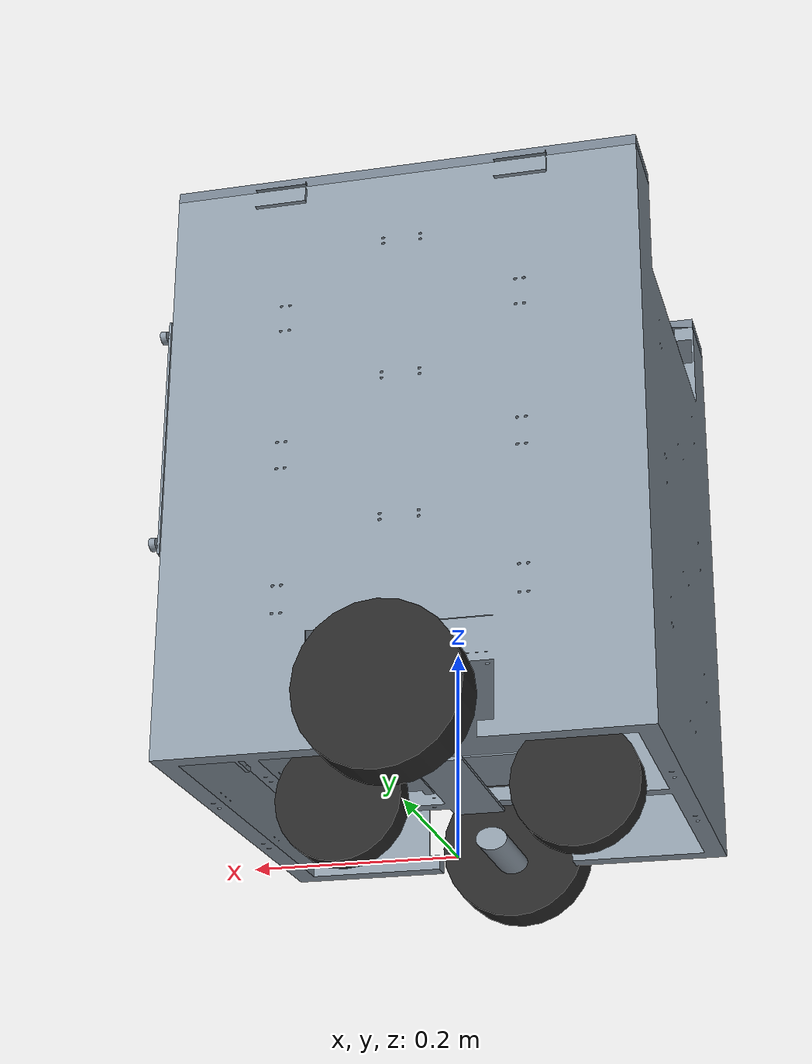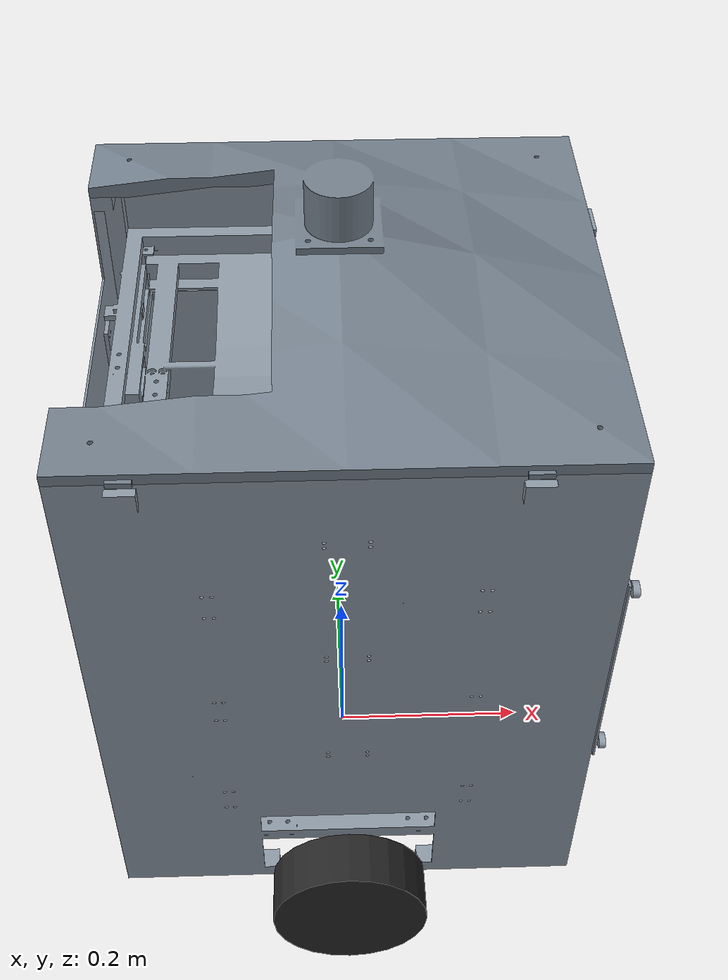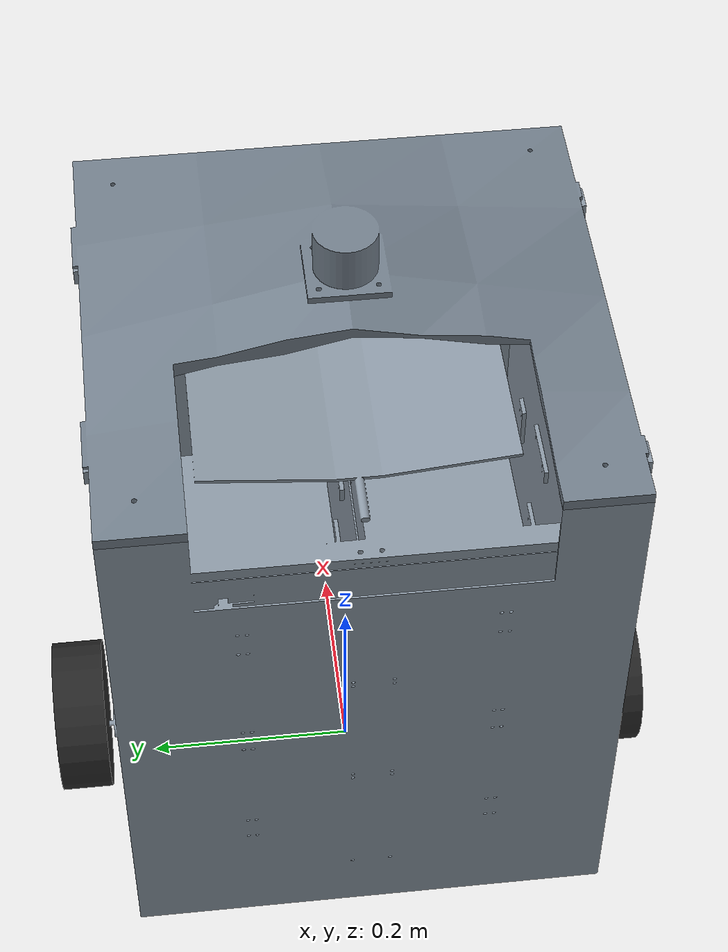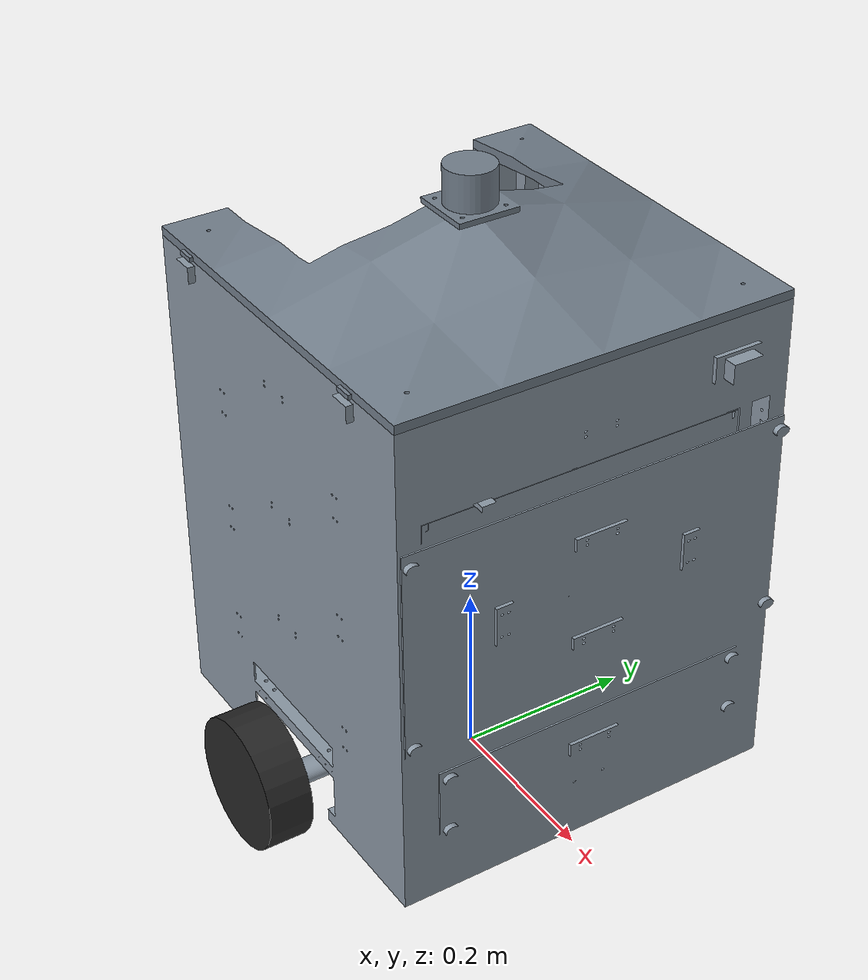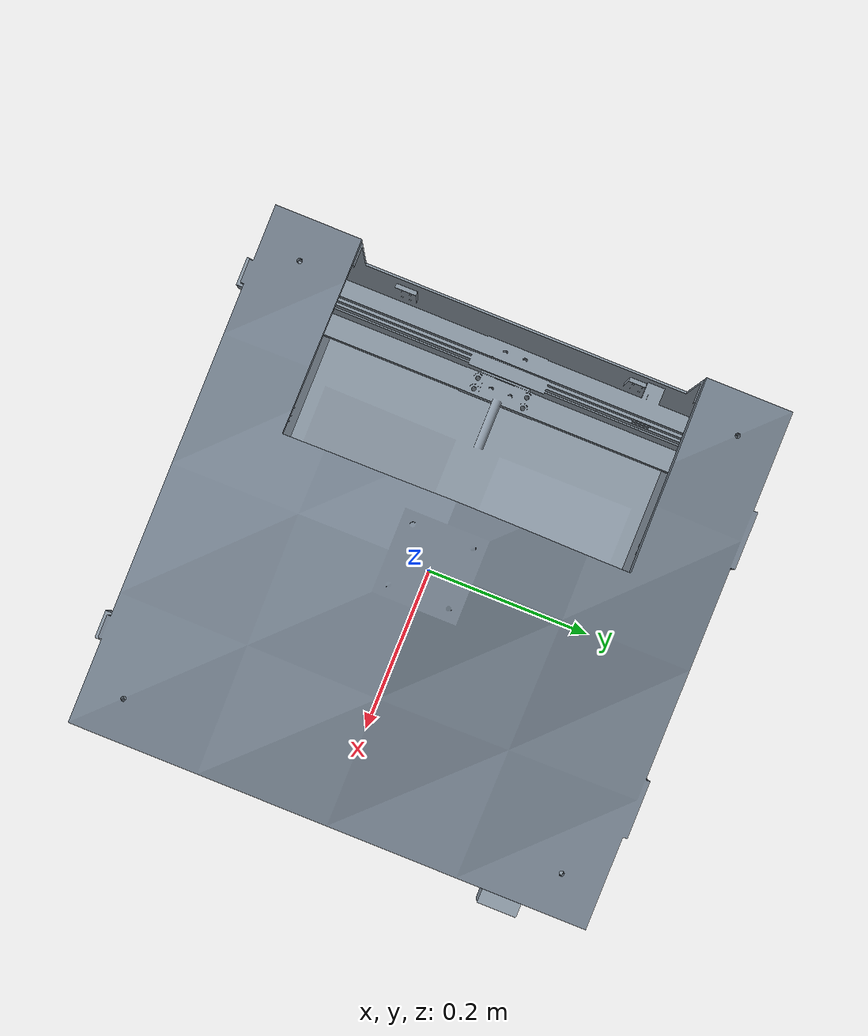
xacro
<?xml version="1.0"?>
<robot xmlns:xacro="http://www.ros.org/wiki/xacro" name="Limbo">

  <!-- 크기                              -->
  <xacro:property name="body_size" value="0.45"/>
  <!-- 몸체 윗면 높이. 2026-10-15 0.835 → 0.609: 뚜껑 위 MID-360이 바닥에서 0.70 m가 되게 몸체를 줄임(하드웨어 최종 치수). 카메라는 0.60 m -->
  <xacro:property name="body_top" value="0.609"/>
  <xacro:property name="body_clearance" value="0.06"/>

  <xacro:property name="wheel_radius" value="0.075"/>
  <xacro:property name="wheel_width" value="0.05"/>
  <xacro:property name="wheel_separation" value="0.54"/>

  <xacro:property name="caster_radius" value="0.0625"/>
  <xacro:property name="caster_x" value="0.115"/>

  <!-- 뚜껑 경첩: 몸체 앞-왼쪽 윗모서리. 뚜껑을 열면 위에 달린 MID-360도 같이 기운다 -->
  <xacro:property name="lid_hinge_x" value="0.225"/>
  <xacro:property name="lid_hinge_y" value="0.23"/>
  <xacro:property name="lid_thickness" value="0.07"/>
  <xacro:property name="lid_open_max" value="1.9722220547535925"/>

  <!-- MID-360: 뚜껑 위, 몸체 중심 위 바닥에서 0.70 m (경첩 높이 0.609 + 0.09094) -->
  <xacro:property name="mid360_above_hinge" value="0.09094"/>

  <!-- OAK-D Lite: 앞면, 바닥에서 0.60 m(camera_z), 중심에서 왼쪽 0.1575 m, 수평 -->
  <xacro:property name="camera_x" value="0.235"/>
  <xacro:property name="camera_y" value="0.1575"/>
  <xacro:arg name="camera_z" default="0.60"/>
  <xacro:arg name="camera_pitch_deg" default="0"/>
  <xacro:property name="camera_z" value="$(arg camera_z)"/>
  <xacro:property name="camera_pitch" value="${radians($(arg camera_pitch_deg))}"/>

  <material name="body_gray"><color rgba="0.55 0.60 0.65 1.0"/></material>
  <material name="lid_gray"><color rgba="0.45 0.50 0.55 1.0"/></material>
  <material name="black"><color rgba="0.15 0.15 0.15 1.0"/></material>

  <!-- 몸체                              -->
  <link name="base_footprint"/>

  <joint name="base_footprint_joint" type="fixed">
    <parent link="base_footprint"/>
    <child link="base_link"/>
    <origin xyz="0 0 0" rpy="0 0 0"/>
  </joint>

  <link name="base_link">
    <inertial>
      <origin xyz="0 0 0.42" rpy="0 0 0"/>
      <mass value="20.0"/>
      <inertia ixx="1.35" iyy="1.35" izz="0.675" ixy="0" ixz="0" iyz="0"/>
    </inertial>
    <visual>
      <geometry>
        <!-- 메시는 높이 0.835 m로 그려져 있어 body_top에 맞춰 z만 줄인다 (Gazebo 라이다는 시각 메시에 부딪히므로 메시가 높으면 자기 몸체를 본다, 2026-10-15) -->
        <mesh filename="package://limbo_description/meshes/v14/body.stl" scale="1 1 ${body_top / 0.835}"/>
      </geometry>
      <material name="body_gray"/>
    </visual>
    <!-- 충돌은 단순한 상자 (메시는 삼각형 15만 개라 물리 계산에 쓰지 않는다) -->
    <collision>
      <origin xyz="0 0 ${(body_clearance + body_top) / 2}" rpy="0 0 0"/>
      <geometry>
        <box size="${body_size} ${body_size} ${body_top - body_clearance}"/>
      </geometry>
    </collision>
  </link>

  <!-- 구동 바퀴                         -->
  <xacro:macro name="drive_wheel" params="side y">
    <link name="${side}_wheel_link">
      <inertial>
        <mass value="0.5"/>
        <inertia ixx="0.000807" iyy="0.001406" izz="0.000807" ixy="0" ixz="0" iyz="0"/>
      </inertial>
      <visual>
        <origin xyz="0 0 0" rpy="${pi / 2} 0 0"/>
        <geometry><cylinder radius="${wheel_radius}" length="${wheel_width}"/></geometry>
        <material name="black"/>
      </visual>
      <collision>
        <origin xyz="0 0 0" rpy="${pi / 2} 0 0"/>
        <geometry><cylinder radius="${wheel_radius}" length="${wheel_width}"/></geometry>
      </collision>
    </link>
    <joint name="${side}_wheel_joint" type="continuous">
      <parent link="base_link"/>
      <child link="${side}_wheel_link"/>
      <origin xyz="0 ${y} ${wheel_radius}" rpy="0 0 0"/>
      <axis xyz="0 1 0"/>
      <limit effort="4.0" velocity="20.0"/>
    </joint>
  </xacro:macro>
  <xacro:drive_wheel side="left" y="${wheel_separation / 2}"/>
  <xacro:drive_wheel side="right" y="${-wheel_separation / 2}"/>

  <!-- 캐스터: 원본처럼 회전하지 않는 저마찰 구로 대체 (스위블은 시뮬레이션하지 않음) -->
  <xacro:macro name="caster" params="name x">
    <link name="${name}_caster_link">
      <inertial>
        <mass value="0.25"/>
        <inertia ixx="0.00039" iyy="0.00039" izz="0.00039" ixy="0" ixz="0" iyz="0"/>
      </inertial>
      <visual>
        <origin xyz="0 0 0" rpy="${pi / 2} 0 0"/>
        <geometry><cylinder radius="${caster_radius}" length="0.032"/></geometry>
        <material name="black"/>
      </visual>
      <collision>
        <geometry><sphere radius="${caster_radius}"/></geometry>
      </collision>
    </link>
    <joint name="${name}_caster_joint" type="fixed">
      <parent link="base_link"/>
      <child link="${name}_caster_link"/>
      <origin xyz="${x} 0 ${caster_radius}" rpy="0 0 0"/>
    </joint>
  </xacro:macro>
  <xacro:caster name="front" x="${caster_x}"/>
  <xacro:caster name="rear" x="${-caster_x}"/>

  <!-- 뚜껑 (경첩, 0~113°)               -->
  <link name="lid_link">
    <inertial>
      <origin xyz="${-lid_hinge_x} ${-lid_hinge_y} 0.04" rpy="0 0 0"/>
      <mass value="0.8"/>
      <inertia ixx="0.016" iyy="0.016" izz="0.028" ixy="0" ixz="0" iyz="0"/>
    </inertial>
    <visual>
      <geometry>
        <mesh filename="package://limbo_description/meshes/v14/lid.stl" scale="1 1 1"/>
      </geometry>
      <material name="lid_gray"/>
    </visual>
    <collision>
      <origin xyz="${-lid_hinge_x} ${-lid_hinge_y} ${lid_thickness / 2}" rpy="0 0 0"/>
      <geometry><box size="${body_size} ${body_size} ${lid_thickness}"/></geometry>
    </collision>
  </link>

  <joint name="lid_hinge_joint" type="revolute">
    <parent link="base_link"/>
    <child link="lid_link"/>
    <origin xyz="${lid_hinge_x} ${lid_hinge_y} ${body_top}" rpy="0 0 0"/>
    <axis xyz="-1 0 0"/>
    <limit lower="0" upper="${lid_open_max}" effort="30" velocity="0.4"/>
    <dynamics damping="2.0"/>
  </joint>

  <!-- Livox MID-360 (+ 내장 IMU): 뚜껑 위 -->
  <link name="mid360_link"/>

  <joint name="mid360_joint" type="fixed">
    <parent link="lid_link"/>
    <child link="mid360_link"/>
    <origin xyz="${-lid_hinge_x} ${-lid_hinge_y} ${mid360_above_hinge}" rpy="0 0 0"/>
  </joint>

  <!-- OAK-D Lite (RGB-D)               -->
  <link name="rgbd_camera_link"/>

  <joint name="rgbd_camera_joint" type="fixed">
    <parent link="base_link"/>
    <child link="rgbd_camera_link"/>
    <origin xyz="${camera_x} ${camera_y} ${camera_z}" rpy="0 ${camera_pitch} 0"/>
  </joint>

  <!-- ROS optical frame: X 오른쪽, Y 아래, Z 앞 -->
  <link name="rgbd_camera_optical_link"/>

  <joint name="rgbd_camera_optical_joint" type="fixed">
    <parent link="rgbd_camera_link"/>
    <child link="rgbd_camera_optical_link"/>
    <origin xyz="0 0 0" rpy="-1.570796 0 -1.570796"/>
  </joint>

  <!-- ToF 근접 센서 (VL53L5CX, 8x8)     -->
  <!-- 범퍼 높이 전면 중앙, 수평. 카메라가 못 보는 코앞(1.5 m 안)에 무언가 있는지만 본다 (R5).
       차체 메시 앞면이 x 0.245라 그 바로 앞에 둔다 -->
  <link name="tof_link"/>

  <joint name="tof_joint" type="fixed">
    <parent link="base_link"/>
    <child link="tof_link"/>
    <origin xyz="0.25 0 0.10" rpy="0 0 0"/>
  </joint>

  <xacro:include filename="$(find limbo_description)/urdf/limbo.gazebo.xacro"/>

</robot>
